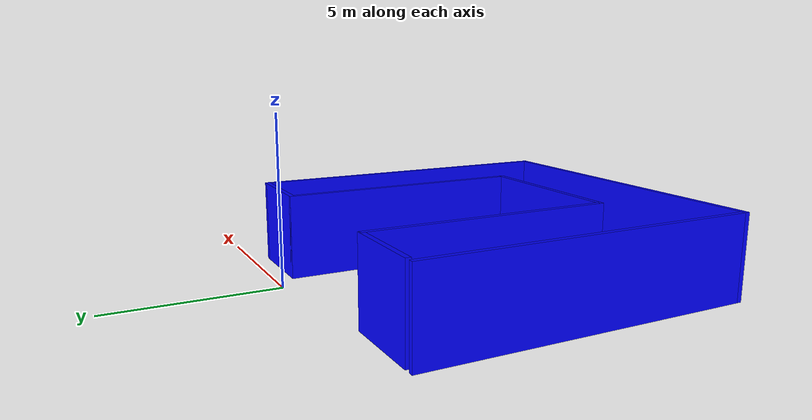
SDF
<?xml version='1.0'?>
<sdf version='1.6'>
  <model name='mybuilding'>
    <pose frame=''>-1.80994 -5.59522 0 0 -0 0</pose>
    <link name='Wall_10'>
      <collision name='Wall_10_Collision'>
        <geometry>
          <box>
            <size>2.5 0.15 2.5</size>
          </box>
        </geometry>
        <pose frame=''>0 0 1.25 0 -0 0</pose>
      </collision>
      <visual name='Wall_10_Visual'>
        <pose frame=''>0 0 1.25 0 -0 0</pose>
        <geometry>
          <box>
            <size>2.5 0.15 2.5</size>
          </box>
        </geometry>
        <material>
          <script>
            <uri>file://media/materials/scripts/gazebo.material</uri>
            <name>Gazebo/Grey</name>
          </script>
          <ambient>0 0 1 1</ambient>
        </material>
        <meta>
          <layer>0</layer>
        </meta>
      </visual>
      <pose frame=''>3.75006 4.98578 0 0 -0 0</pose>
    </link>
    <link name='Wall_11'>
      <collision name='Wall_11_Collision'>
        <geometry>
          <box>
            <size>10.1214 0.15 2.5</size>
          </box>
        </geometry>
        <pose frame=''>0 0 1.25 0 -0 0</pose>
      </collision>
      <visual name='Wall_11_Visual'>
        <pose frame=''>0 0 1.25 0 -0 0</pose>
        <geometry>
          <box>
            <size>10.1214 0.15 2.5</size>
          </box>
        </geometry>
        <material>
          <script>
            <uri>file://media/materials/scripts/gazebo.material</uri>
            <name>Gazebo/Grey</name>
          </script>
          <ambient>0 0 1 1</ambient>
        </material>
        <meta>
          <layer>0</layer>
        </meta>
      </visual>
      <pose frame=''>4.92506 9.6e-05 0 0 0 -1.5708</pose>
    </link>
    <link name='Wall_15'>
      <collision name='Wall_15_Collision'>
        <geometry>
          <box>
            <size>10.0001 0.15 2.5</size>
          </box>
        </geometry>
        <pose frame=''>0 0 1.25 0 -0 0</pose>
      </collision>
      <visual name='Wall_15_Visual'>
        <pose frame=''>0 0 1.25 0 -0 0</pose>
        <geometry>
          <box>
            <size>10.0001 0.15 2.5</size>
          </box>
        </geometry>
        <material>
          <script>
            <uri>file://media/materials/scripts/gazebo.material</uri>
            <name>Gazebo/Grey</name>
          </script>
          <ambient>0 0 1 1</ambient>
        </material>
        <meta>
          <layer>0</layer>
        </meta>
      </visual>
      <pose frame=''>0 -4.98568 0 0 0 -3.14157</pose>
    </link>
    <link name='Wall_17'>
      <collision name='Wall_17_Collision'>
        <geometry>
          <box>
            <size>10 0.15 2.5</size>
          </box>
        </geometry>
        <pose frame=''>0 0 1.25 0 -0 0</pose>
      </collision>
      <visual name='Wall_17_Visual'>
        <pose frame=''>0 0 1.25 0 -0 0</pose>
        <geometry>
          <box>
            <size>10 0.15 2.5</size>
          </box>
        </geometry>
        <material>
          <script>
            <uri>file://media/materials/scripts/gazebo.material</uri>
            <name>Gazebo/Grey</name>
          </script>
          <ambient>0 0 1 1</ambient>
        </material>
        <meta>
          <layer>0</layer>
        </meta>
      </visual>
      <pose frame=''>-4.92506 -0.060779 0 0 -0 1.5708</pose>
    </link>
    <link name='Wall_6'>
      <collision name='Wall_6_Collision'>
        <geometry>
          <box>
            <size>2.5 0.15 2.5</size>
          </box>
        </geometry>
        <pose frame=''>0 0 1.25 0 -0 0</pose>
      </collision>
      <visual name='Wall_6_Visual'>
        <pose frame=''>0 0 1.25 0 -0 0</pose>
        <geometry>
          <box>
            <size>2.5 0.15 2.5</size>
          </box>
        </geometry>
        <material>
          <script>
            <uri>file://media/materials/scripts/gazebo.material</uri>
            <name>Gazebo/Grey</name>
          </script>
          <ambient>0 0 1 1</ambient>
        </material>
        <meta>
          <layer>0</layer>
        </meta>
      </visual>
      <pose frame=''>-3.44994 4.88024 0 0 -0 0</pose>
    </link>
    <link name='Wall_7'>
      <collision name='Wall_7_Collision'>
        <geometry>
          <box>
            <size>7.35928 0.15 2.5</size>
          </box>
        </geometry>
        <pose frame=''>0 0 1.25 0 -0 0</pose>
      </collision>
      <visual name='Wall_7_Visual'>
        <pose frame=''>0 0 1.25 0 -0 0</pose>
        <geometry>
          <box>
            <size>7.35928 0.15 2.5</size>
          </box>
        </geometry>
        <material>
          <script>
            <uri>file://media/materials/scripts/gazebo.material</uri>
            <name>Gazebo/Grey</name>
          </script>
          <ambient>0 0 1 1</ambient>
        </material>
        <meta>
          <layer>0</layer>
        </meta>
      </visual>
      <pose frame=''>-2.27494 1.24042 0 0 0 -1.5708</pose>
    </link>
    <link name='Wall_8'>
      <collision name='Wall_8_Collision'>
        <geometry>
          <box>
            <size>5 0.15 2.5</size>
          </box>
        </geometry>
        <pose frame=''>0 0 1.25 0 -0 0</pose>
      </collision>
      <visual name='Wall_8_Visual'>
        <pose frame=''>0 0 1.25 0 -0 0</pose>
        <geometry>
          <box>
            <size>5 0.15 2.5</size>
          </box>
        </geometry>
        <material>
          <script>
            <uri>file://media/materials/scripts/gazebo.material</uri>
            <name>Gazebo/Grey</name>
          </script>
          <ambient>0 0 1 1</ambient>
        </material>
        <meta>
          <layer>0</layer>
        </meta>
      </visual>
      <pose frame=''>0.150062 -2.36422 0 0 -0 0</pose>
    </link>
    <link name='Wall_9'>
      <collision name='Wall_9_Collision'>
        <geometry>
          <box>
            <size>7.5 0.15 2.5</size>
          </box>
        </geometry>
        <pose frame=''>0 0 1.25 0 -0 0</pose>
      </collision>
      <visual name='Wall_9_Visual'>
        <pose frame=''>0 0 1.25 0 -0 0</pose>
        <geometry>
          <box>
            <size>7.5 0.15 2.5</size>
          </box>
        </geometry>
        <material>
          <script>
            <uri>file://media/materials/scripts/gazebo.material</uri>
            <name>Gazebo/Grey</name>
          </script>
          <ambient>0 0 1 1</ambient>
        </material>
        <meta>
          <layer>0</layer>
        </meta>
      </visual>
      <pose frame=''>2.57506 1.31078 0 0 -0 1.5708</pose>
    </link>
    <static>1</static>
  </model>
</sdf>
